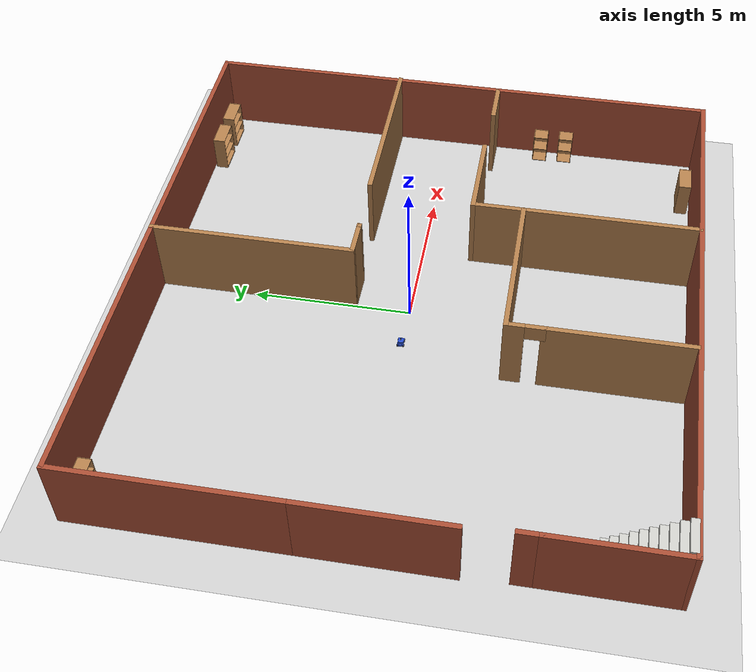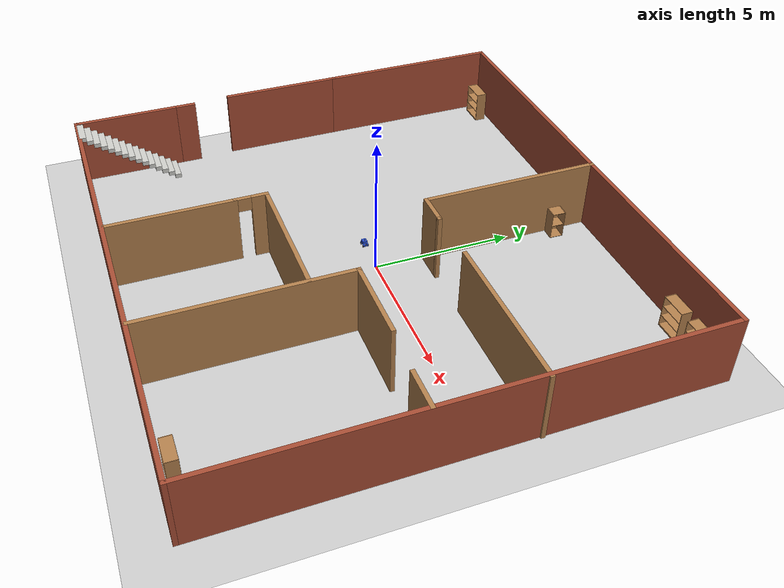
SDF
<sdf version="1.7">
 <world name="default">
  <light name="sun" type="directional">
   <pose>0 0 10 0 -0 0</pose>
   <diffuse>0.8 0.8 0.8 1</diffuse>
   <specular>0.2 0.2 0.2 1</specular>
   <attenuation>
    <range>1000</range>
    <constant>0.9</constant>
    <linear>0.01</linear>
    <quadratic>0.001</quadratic>
   </attenuation>
   <direction>-0.5 0.1 -0.9</direction>
   <spot><inner_angle>0</inner_angle><outer_angle>0</outer_angle><falloff>0</falloff></spot>
  </light>
  <model name="ground_plane">
   <static>1</static>
   <link name="link">
    <collision name="collision">
     <geometry><plane><normal>0 0 1</normal><size>100 100</size></plane></geometry>
     <surface><friction><ode><mu>100</mu><mu2>50</mu2></ode></friction></surface>
    </collision>
    <visual name="visual">
     <cast_shadows>0</cast_shadows>
     <geometry><plane><normal>0 0 1</normal><size>100 100</size></plane></geometry>
     <material>
      <script><uri>file://media/materials/scripts/gazebo.material</uri><name>Gazebo/Grey</name></script>
     </material>
    </visual>
   </link>
  </model>
  <gravity>0 0 -9.8</gravity>
  <magnetic_field>6e-06 2.3e-05 -4.2e-05</magnetic_field>
  <atmosphere type="adiabatic"/>
  <physics type="ode">
   <max_step_size>0.001</max_step_size>
   <real_time_factor>1</real_time_factor>
   <real_time_update_rate>1000</real_time_update_rate>
  </physics>
  <scene><ambient>0.4 0.4 0.4 1</ambient><background>0.7 0.7 0.7 1</background><shadows>1</shadows></scene>
  <audio><device>default</device></audio>
  <spherical_coordinates>
   <surface_model>EARTH_WGS84</surface_model>
   <latitude_deg>0</latitude_deg>
   <longitude_deg>0</longitude_deg>
   <elevation>0</elevation>
   <heading_deg>0</heading_deg>
  </spherical_coordinates>
  <model name="robot">
   <link name="base_footprint">
    <inertial>
     <pose>-0.011433 0 0.134833 0 -0 0</pose>
     <mass>3.75</mass>
     <inertia>
      <ixx>0.0254356</ixx>
      <ixy>0</ixy>
      <ixz>0.00138908</ixz>
      <iyy>0.0336579</iyy>
      <iyz>0</iyz>
      <izz>0.0123355</izz>
     </inertia>
    </inertial>
    <collision name="base_footprint_fixed_joint_lump__base_link_collision">
     <pose>0 0 0.078 0 -0 0</pose>
     <geometry><box><size>0.3 0.15 0.056</size></box></geometry>
    </collision>
    <collision name="base_footprint_fixed_joint_lump__mid_link_collision_1">
     <pose>0 0 0.1085 0 -0 0</pose>
     <geometry><box><size>0.3 0.2 0.005</size></box></geometry>
    </collision>
    <collision name="base_footprint_fixed_joint_lump__camera_link_collision_2">
     <pose>0.1425 0 0.1235 0 -0 0</pose>
     <geometry><box><size>0.015 0.07 0.025</size></box></geometry>
    </collision>
    <collision name="base_footprint_fixed_joint_lump__top_link_collision_3">
     <pose>-0.025 0 0.161 0 -0 0</pose>
     <geometry><box><size>0.18 0.17 0.1</size></box></geometry>
    </collision>
    <collision name="base_footprint_fixed_joint_lump__lidar_link_collision_4">
     <pose>0 0 0.226 0 -0 0</pose>
     <geometry><cylinder><length>0.03</length><radius>0.02</radius></cylinder></geometry>
    </collision>
    <visual name="base_footprint_fixed_joint_lump__base_link_visual">
     <pose>0 0 0.078 0 -0 0</pose>
     <geometry><box><size>0.3 0.15 0.056</size></box></geometry>
     <material>
      <script><name>Gazebo/Blue</name><uri>file://media/materials/scripts/gazebo.material</uri></script>
     </material>
    </visual>
    <visual name="base_footprint_fixed_joint_lump__mid_link_visual_1">
     <pose>0 0 0.1085 0 -0 0</pose>
     <geometry><box><size>0.3 0.2 0.005</size></box></geometry>
     <material>
      <script><name>Gazebo/Blue</name><uri>file://media/materials/scripts/gazebo.material</uri></script>
     </material>
    </visual>
    <visual name="base_footprint_fixed_joint_lump__camera_link_visual_2">
     <pose>0.1425 0 0.1235 0 -0 0</pose>
     <geometry><box><size>0.015 0.07 0.025</size></box></geometry>
     <material>
      <script><name>Gazebo/Black</name><uri>file://media/materials/scripts/gazebo.material</uri></script>
     </material>
    </visual>
    <visual name="base_footprint_fixed_joint_lump__top_link_visual_3">
     <pose>-0.025 0 0.161 0 -0 0</pose>
     <geometry><box><size>0.18 0.17 0.1</size></box></geometry>
     <material>
      <script><name>Gazebo/Blue</name><uri>file://media/materials/scripts/gazebo.material</uri></script>
     </material>
    </visual>
    <visual name="base_footprint_fixed_joint_lump__lidar_link_visual_4">
     <pose>0 0 0.226 0 -0 0</pose>
     <geometry><cylinder><length>0.03</length><radius>0.02</radius></cylinder></geometry>
     <material>
      <script><name>Gazebo/Black</name><uri>file://media/materials/scripts/gazebo.material</uri></script>
     </material>
    </visual>
    <sensor name="camera" type="camera">
     <visualize>1</visualize>
     <update_rate>10</update_rate>
     <camera>
      <horizontal_fov>1.089</horizontal_fov>
      <image><format>R8G8B8</format><width>640</width><height>480</height></image>
      <clip><near>0.05</near><far>2.1</far></clip>
     </camera>
     <plugin name="camera_controller" filename="libgazebo_ros_camera.so">
      <frame_name>camera_link_optical</frame_name>
     </plugin>
     <pose>0.1425 0 0.111 0 -0 0</pose>
    </sensor>
    <sensor name="laser" type="ray">
     <visualize>1</visualize>
     <update_rate>10</update_rate>
     <ray>
      <scan>
       <horizontal>
        <samples>360</samples>
        <min_angle>-3.14</min_angle>
        <max_angle>3.14</max_angle>
        <resolution>1</resolution>
       </horizontal>
       <vertical><samples>1</samples><min_angle>0</min_angle><max_angle>0</max_angle></vertical>
      </scan>
      <range><min>0.3</min><max>12</max></range>
     </ray>
     <plugin name="laser_controller" filename="libgazebo_ros_ray_sensor.so">
      <ros><argument>~/out:=scan</argument></ros>
      <output_type>sensor_msgs/LaserScan</output_type>
      <frame_name>lidar_link</frame_name>
     </plugin>
     <pose>0 0 0.226 0 -0 0</pose>
    </sensor>
   </link>
   <joint name="fl_wheel" type="revolute">
    <pose relative_to="base_footprint">0.1 0.0925 0.05 0 -0 0</pose>
    <parent>base_footprint</parent>
    <child>fl_wheel_link</child>
    <axis>
     <xyz>0 1 0</xyz>
     <limit><lower>-1e+16</lower><upper>1e+16</upper></limit>
     <dynamics><spring_reference>0</spring_reference><spring_stiffness>0</spring_stiffness></dynamics>
    </axis>
   </joint>
   <link name="fl_wheel_link">
    <pose relative_to="fl_wheel">0 0 0 0 -0 0</pose>
    <inertial>
     <pose>0 0 0 1.5708 -0 0</pose>
     <mass>0.2</mass>
     <inertia>
      <ixx>0.000145417</ixx>
      <ixy>0</ixy>
      <ixz>0</ixz>
      <iyy>0.000145417</iyy>
      <iyz>0</iyz>
      <izz>0.00025</izz>
     </inertia>
    </inertial>
    <collision name="fl_wheel_link_collision">
     <pose>0 0 0 1.5708 -0 0</pose>
     <geometry><cylinder><length>0.035</length><radius>0.05</radius></cylinder></geometry>
    </collision>
    <visual name="fl_wheel_link_visual">
     <pose>0 0 0 1.5708 -0 0</pose>
     <geometry><cylinder><length>0.035</length><radius>0.05</radius></cylinder></geometry>
     <material>
      <script><name>Gazebo/Black</name><uri>file://media/materials/scripts/gazebo.material</uri></script>
     </material>
    </visual>
   </link>
   <joint name="fr_wheel" type="revolute">
    <pose relative_to="base_footprint">0.1 -0.0925 0.05 0 -0 0</pose>
    <parent>base_footprint</parent>
    <child>fr_wheel_link</child>
    <axis>
     <xyz>0 1 0</xyz>
     <limit><lower>-1e+16</lower><upper>1e+16</upper></limit>
     <dynamics><spring_reference>0</spring_reference><spring_stiffness>0</spring_stiffness></dynamics>
    </axis>
   </joint>
   <link name="fr_wheel_link">
    <pose relative_to="fr_wheel">0 0 0 0 -0 0</pose>
    <inertial>
     <pose>0 0 0 1.5708 -0 0</pose>
     <mass>0.2</mass>
     <inertia>
      <ixx>0.000145417</ixx>
      <ixy>0</ixy>
      <ixz>0</ixz>
      <iyy>0.000145417</iyy>
      <iyz>0</iyz>
      <izz>0.00025</izz>
     </inertia>
    </inertial>
    <collision name="fr_wheel_link_collision">
     <pose>0 0 0 1.5708 -0 0</pose>
     <geometry><cylinder><length>0.035</length><radius>0.05</radius></cylinder></geometry>
    </collision>
    <visual name="fr_wheel_link_visual">
     <pose>0 0 0 1.5708 -0 0</pose>
     <geometry><cylinder><length>0.035</length><radius>0.05</radius></cylinder></geometry>
     <material>
      <script><name>Gazebo/Black</name><uri>file://media/materials/scripts/gazebo.material</uri></script>
     </material>
    </visual>
   </link>
   <joint name="rl_wheel" type="revolute">
    <pose relative_to="base_footprint">-0.1 0.0925 0.05 0 -0 0</pose>
    <parent>base_footprint</parent>
    <child>rl_wheel_link</child>
    <axis>
     <xyz>0 1 0</xyz>
     <limit><lower>-1e+16</lower><upper>1e+16</upper></limit>
     <dynamics><spring_reference>0</spring_reference><spring_stiffness>0</spring_stiffness></dynamics>
    </axis>
   </joint>
   <link name="rl_wheel_link">
    <pose relative_to="rl_wheel">0 0 0 0 -0 0</pose>
    <inertial>
     <pose>0 0 0 1.5708 -0 0</pose>
     <mass>0.2</mass>
     <inertia>
      <ixx>0.000145417</ixx>
      <ixy>0</ixy>
      <ixz>0</ixz>
      <iyy>0.000145417</iyy>
      <iyz>0</iyz>
      <izz>0.00025</izz>
     </inertia>
    </inertial>
    <collision name="rl_wheel_link_collision">
     <pose>0 0 0 1.5708 -0 0</pose>
     <geometry><cylinder><length>0.035</length><radius>0.05</radius></cylinder></geometry>
    </collision>
    <visual name="rl_wheel_link_visual">
     <pose>0 0 0 1.5708 -0 0</pose>
     <geometry><cylinder><length>0.035</length><radius>0.05</radius></cylinder></geometry>
     <material>
      <script><name>Gazebo/Black</name><uri>file://media/materials/scripts/gazebo.material</uri></script>
     </material>
    </visual>
   </link>
   <joint name="rr_wheel" type="revolute">
    <pose relative_to="base_footprint">-0.1 -0.0925 0.05 0 -0 0</pose>
    <parent>base_footprint</parent>
    <child>rr_wheel_link</child>
    <axis>
     <xyz>0 1 0</xyz>
     <limit><lower>-1e+16</lower><upper>1e+16</upper></limit>
     <dynamics><spring_reference>0</spring_reference><spring_stiffness>0</spring_stiffness></dynamics>
    </axis>
   </joint>
   <link name="rr_wheel_link">
    <pose relative_to="rr_wheel">0 0 0 0 -0 0</pose>
    <inertial>
     <pose>0 0 0 1.5708 -0 0</pose>
     <mass>0.2</mass>
     <inertia>
      <ixx>0.000145417</ixx>
      <ixy>0</ixy>
      <ixz>0</ixz>
      <iyy>0.000145417</iyy>
      <iyz>0</iyz>
      <izz>0.00025</izz>
     </inertia>
    </inertial>
    <collision name="rr_wheel_link_collision">
     <pose>0 0 0 1.5708 -0 0</pose>
     <geometry><cylinder><length>0.035</length><radius>0.05</radius></cylinder></geometry>
    </collision>
    <visual name="rr_wheel_link_visual">
     <pose>0 0 0 1.5708 -0 0</pose>
     <geometry><cylinder><length>0.035</length><radius>0.05</radius></cylinder></geometry>
     <material>
      <script><name>Gazebo/Black</name><uri>file://media/materials/scripts/gazebo.material</uri></script>
     </material>
    </visual>
   </link>
   <static>0</static>
   <plugin name="differential_drive_controller" filename="libgazebo_ros_diff_drive.so">
    <num_wheel_pairs>2</num_wheel_pairs>
    <left_joint>fl_wheel</left_joint>
    <right_joint>fr_wheel</right_joint>
    <left_joint>rl_wheel</left_joint>
    <right_joint>rr_wheel</right_joint>
    <wheel_separation>0.185</wheel_separation>
    <wheel_separation>0.185</wheel_separation>
    <wheel_diameter>0.1</wheel_diameter>
    <wheel_diameter>0.1</wheel_diameter>
    <updateRate>100</updateRate>
    <max_wheel_acceleration>1.0</max_wheel_acceleration>
    <publish_odom>1</publish_odom>
    <publish_odom_tf>1</publish_odom_tf>
    <publish_wheel_tf>1</publish_wheel_tf>
    <odometry_topic>odom</odometry_topic>
    <odometry_frame>odom</odometry_frame>
    <robot_base_frame>base_footprint</robot_base_frame>
   </plugin>
   <pose>-1.2971 0.05139 1e-06 0 -0 0.021978</pose>
  </model>
  <model name="Indoor">
   <pose>-0.163145 -0.298251 0 0 -0 0</pose>
   <link name="Stairs_0">
    <visual name="Stairs_0_Visual_0">
     <pose>-8.16542 -5.04769 0.083333 0 -0 0</pose>
     <geometry><box><size>1 0.233333 0.166667</size></box></geometry>
     <material>
      <script><uri>file://media/materials/scripts/gazebo.material</uri><name>Gazebo/CeilingTiled</name></script>
      <ambient>1 1 1 1</ambient>
     </material>
     <meta><layer>0</layer></meta>
    </visual>
    <collision name="Stairs_0_Collision_0">
     <geometry><box><size>1 0.233333 0.166667</size></box></geometry>
     <pose>-8.16542 -5.04769 0.083333 0 -0 0</pose>
    </collision>
    <visual name="Stairs_0_Visual_1">
     <pose>-8.16542 -5.28102 0.25 0 -0 0</pose>
     <geometry><box><size>1 0.233333 0.166667</size></box></geometry>
     <material>
      <script><uri>file://media/materials/scripts/gazebo.material</uri><name>Gazebo/CeilingTiled</name></script>
      <ambient>1 1 1 1</ambient>
     </material>
     <meta><layer>0</layer></meta>
    </visual>
    <collision name="Stairs_0_Collision_1">
     <geometry><box><size>1 0.233333 0.166667</size></box></geometry>
     <pose>-8.16542 -5.28102 0.25 0 -0 0</pose>
    </collision>
    <visual name="Stairs_0_Visual_2">
     <pose>-8.16542 -5.51436 0.416667 0 -0 0</pose>
     <geometry><box><size>1 0.233333 0.166667</size></box></geometry>
     <material>
      <script><uri>file://media/materials/scripts/gazebo.material</uri><name>Gazebo/CeilingTiled</name></script>
      <ambient>1 1 1 1</ambient>
     </material>
     <meta><layer>0</layer></meta>
    </visual>
    <collision name="Stairs_0_Collision_2">
     <geometry><box><size>1 0.233333 0.166667</size></box></geometry>
     <pose>-8.16542 -5.51436 0.416667 0 -0 0</pose>
    </collision>
    <visual name="Stairs_0_Visual_3">
     <pose>-8.16542 -5.74769 0.583333 0 -0 0</pose>
     <geometry><box><size>1 0.233333 0.166667</size></box></geometry>
     <material>
      <script><uri>file://media/materials/scripts/gazebo.material</uri><name>Gazebo/CeilingTiled</name></script>
      <ambient>1 1 1 1</ambient>
     </material>
     <meta><layer>0</layer></meta>
    </visual>
    <collision name="Stairs_0_Collision_3">
     <geometry><box><size>1 0.233333 0.166667</size></box></geometry>
     <pose>-8.16542 -5.74769 0.583333 0 -0 0</pose>
    </collision>
    <visual name="Stairs_0_Visual_4">
     <pose>-8.16542 -5.98103 0.75 0 -0 0</pose>
     <geometry><box><size>1 0.233333 0.166667</size></box></geometry>
     <material>
      <script><uri>file://media/materials/scripts/gazebo.material</uri><name>Gazebo/CeilingTiled</name></script>
      <ambient>1 1 1 1</ambient>
     </material>
     <meta><layer>0</layer></meta>
    </visual>
    <collision name="Stairs_0_Collision_4">
     <geometry><box><size>1 0.233333 0.166667</size></box></geometry>
     <pose>-8.16542 -5.98103 0.75 0 -0 0</pose>
    </collision>
    <visual name="Stairs_0_Visual_5">
     <pose>-8.16542 -6.21436 0.916667 0 -0 0</pose>
     <geometry><box><size>1 0.233333 0.166667</size></box></geometry>
     <material>
      <script><uri>file://media/materials/scripts/gazebo.material</uri><name>Gazebo/CeilingTiled</name></script>
      <ambient>1 1 1 1</ambient>
     </material>
     <meta><layer>0</layer></meta>
    </visual>
    <collision name="Stairs_0_Collision_5">
     <geometry><box><size>1 0.233333 0.166667</size></box></geometry>
     <pose>-8.16542 -6.21436 0.916667 0 -0 0</pose>
    </collision>
    <visual name="Stairs_0_Visual_6">
     <pose>-8.16542 -6.44769 1.08333 0 -0 0</pose>
     <geometry><box><size>1 0.233333 0.166667</size></box></geometry>
     <material>
      <script><uri>file://media/materials/scripts/gazebo.material</uri><name>Gazebo/CeilingTiled</name></script>
      <ambient>1 1 1 1</ambient>
     </material>
     <meta><layer>0</layer></meta>
    </visual>
    <collision name="Stairs_0_Collision_6">
     <geometry><box><size>1 0.233333 0.166667</size></box></geometry>
     <pose>-8.16542 -6.44769 1.08333 0 -0 0</pose>
    </collision>
    <visual name="Stairs_0_Visual_7">
     <pose>-8.16542 -6.68103 1.25 0 -0 0</pose>
     <geometry><box><size>1 0.233333 0.166667</size></box></geometry>
     <material>
      <script><uri>file://media/materials/scripts/gazebo.material</uri><name>Gazebo/CeilingTiled</name></script>
      <ambient>1 1 1 1</ambient>
     </material>
     <meta><layer>0</layer></meta>
    </visual>
    <collision name="Stairs_0_Collision_7">
     <geometry><box><size>1 0.233333 0.166667</size></box></geometry>
     <pose>-8.16542 -6.68103 1.25 0 -0 0</pose>
    </collision>
    <visual name="Stairs_0_Visual_8">
     <pose>-8.16542 -6.91436 1.41667 0 -0 0</pose>
     <geometry><box><size>1 0.233333 0.166667</size></box></geometry>
     <material>
      <script><uri>file://media/materials/scripts/gazebo.material</uri><name>Gazebo/CeilingTiled</name></script>
      <ambient>1 1 1 1</ambient>
     </material>
     <meta><layer>0</layer></meta>
    </visual>
    <collision name="Stairs_0_Collision_8">
     <geometry><box><size>1 0.233333 0.166667</size></box></geometry>
     <pose>-8.16542 -6.91436 1.41667 0 -0 0</pose>
    </collision>
    <visual name="Stairs_0_Visual_9">
     <pose>-8.16542 -7.14769 1.58333 0 -0 0</pose>
     <geometry><box><size>1 0.233333 0.166667</size></box></geometry>
     <material>
      <script><uri>file://media/materials/scripts/gazebo.material</uri><name>Gazebo/CeilingTiled</name></script>
      <ambient>1 1 1 1</ambient>
     </material>
     <meta><layer>0</layer></meta>
    </visual>
    <collision name="Stairs_0_Collision_9">
     <geometry><box><size>1 0.233333 0.166667</size></box></geometry>
     <pose>-8.16542 -7.14769 1.58333 0 -0 0</pose>
    </collision>
    <visual name="Stairs_0_Visual_10">
     <pose>-8.16542 -7.38103 1.75 0 -0 0</pose>
     <geometry><box><size>1 0.233333 0.166667</size></box></geometry>
     <material>
      <script><uri>file://media/materials/scripts/gazebo.material</uri><name>Gazebo/CeilingTiled</name></script>
      <ambient>1 1 1 1</ambient>
     </material>
     <meta><layer>0</layer></meta>
    </visual>
    <collision name="Stairs_0_Collision_10">
     <geometry><box><size>1 0.233333 0.166667</size></box></geometry>
     <pose>-8.16542 -7.38103 1.75 0 -0 0</pose>
    </collision>
    <visual name="Stairs_0_Visual_11">
     <pose>-8.16542 -7.61436 1.91667 0 -0 0</pose>
     <geometry><box><size>1 0.233333 0.166667</size></box></geometry>
     <material>
      <script><uri>file://media/materials/scripts/gazebo.material</uri><name>Gazebo/CeilingTiled</name></script>
      <ambient>1 1 1 1</ambient>
     </material>
     <meta><layer>0</layer></meta>
    </visual>
    <collision name="Stairs_0_Collision_11">
     <geometry><box><size>1 0.233333 0.166667</size></box></geometry>
     <pose>-8.16542 -7.61436 1.91667 0 -0 0</pose>
    </collision>
    <visual name="Stairs_0_Visual_12">
     <pose>-8.16542 -7.84769 2.08333 0 -0 0</pose>
     <geometry><box><size>1 0.233333 0.166667</size></box></geometry>
     <material>
      <script><uri>file://media/materials/scripts/gazebo.material</uri><name>Gazebo/CeilingTiled</name></script>
      <ambient>1 1 1 1</ambient>
     </material>
     <meta><layer>0</layer></meta>
    </visual>
    <collision name="Stairs_0_Collision_12">
     <geometry><box><size>1 0.233333 0.166667</size></box></geometry>
     <pose>-8.16542 -7.84769 2.08333 0 -0 0</pose>
    </collision>
    <visual name="Stairs_0_Visual_13">
     <pose>-8.16542 -8.08103 2.25 0 -0 0</pose>
     <geometry><box><size>1 0.233333 0.166667</size></box></geometry>
     <material>
      <script><uri>file://media/materials/scripts/gazebo.material</uri><name>Gazebo/CeilingTiled</name></script>
      <ambient>1 1 1 1</ambient>
     </material>
     <meta><layer>0</layer></meta>
    </visual>
    <collision name="Stairs_0_Collision_13">
     <geometry><box><size>1 0.233333 0.166667</size></box></geometry>
     <pose>-8.16542 -8.08103 2.25 0 -0 0</pose>
    </collision>
    <visual name="Stairs_0_Visual_14">
     <pose>-8.16542 -8.31436 2.41667 0 -0 0</pose>
     <geometry><box><size>1 0.233333 0.166667</size></box></geometry>
     <material>
      <script><uri>file://media/materials/scripts/gazebo.material</uri><name>Gazebo/CeilingTiled</name></script>
      <ambient>1 1 1 1</ambient>
     </material>
     <meta><layer>0</layer></meta>
    </visual>
    <collision name="Stairs_0_Collision_14">
     <geometry><box><size>1 0.233333 0.166667</size></box></geometry>
     <pose>-8.16542 -8.31436 2.41667 0 -0 0</pose>
    </collision>
   </link>
   <link name="Wall_0">
    <collision name="Wall_0_Collision">
     <geometry><box><size>4.5 0.15 2.5</size></box></geometry>
     <pose>0 0 1.25 0 -0 0</pose>
    </collision>
    <visual name="Wall_0_Visual">
     <pose>0 0 1.25 0 -0 0</pose>
     <geometry><box><size>4.5 0.15 2.5</size></box></geometry>
     <material>
      <script><uri>file://media/materials/scripts/gazebo.material</uri><name>Gazebo/Bricks</name></script>
      <ambient>1 1 1 1</ambient>
     </material>
     <meta><layer>0</layer></meta>
    </visual>
    <pose>-8.8787 -0.35 0 0 -0 1.5708</pose>
   </link>
   <link name="Wall_10">
    <collision name="Wall_10_Collision">
     <geometry><box><size>6.5 0.15 2.5</size></box></geometry>
     <pose>0 0 1.25 0 -0 0</pose>
    </collision>
    <visual name="Wall_10_Visual">
     <pose>0 0 1.25 0 -0 0</pose>
     <geometry><box><size>6.5 0.15 2.5</size></box></geometry>
     <material>
      <script><uri>file://media/materials/scripts/gazebo.material</uri><name>Gazebo/Wood</name></script>
      <ambient>1 1 1 1</ambient>
     </material>
     <meta><layer>0</layer></meta>
    </visual>
    <pose>0.221304 5.25 0 0 -0 -1.5708</pose>
   </link>
   <link name="Wall_11">
    <collision name="Wall_11_Collision">
     <geometry><box><size>1.25 0.15 2.5</size></box></geometry>
     <pose>0 0 1.25 0 -0 0</pose>
    </collision>
    <visual name="Wall_11_Visual">
     <pose>0 0 1.25 0 -0 0</pose>
     <geometry><box><size>1.25 0.15 2.5</size></box></geometry>
     <material>
      <script><uri>file://media/materials/scripts/gazebo.material</uri><name>Gazebo/Wood</name></script>
      <ambient>1 1 1 1</ambient>
     </material>
     <meta><layer>0</layer></meta>
    </visual>
    <pose>0.771304 2.075 0 0 -0 0</pose>
   </link>
   <link name="Wall_12">
    <collision name="Wall_12_Collision">
     <geometry><box><size>0.15 0.15 2.5</size></box></geometry>
     <pose>0 0 1.25 0 -0 0</pose>
    </collision>
    <visual name="Wall_12_Visual">
     <pose>0 0 1.25 0 -0 0</pose>
     <geometry><box><size>0.15 0.15 2.5</size></box></geometry>
     <material>
      <script><uri>file://media/materials/scripts/gazebo.material</uri><name>Gazebo/Wood</name></script>
      <ambient>1 1 1 1</ambient>
     </material>
     <meta><layer>0</layer></meta>
    </visual>
    <pose>1.3213 2.075 0 0 -0 0</pose>
   </link>
   <link name="Wall_13">
    <collision name="Wall_13_Collision">
     <geometry><box><size>0.16 0.15 2.5</size></box></geometry>
     <pose>0 0 1.25 0 -0 0</pose>
    </collision>
    <visual name="Wall_13_Visual">
     <pose>0 0 1.25 0 -0 0</pose>
     <geometry><box><size>0.16 0.15 2.5</size></box></geometry>
     <material>
      <script><uri>file://media/materials/scripts/gazebo.material</uri><name>Gazebo/Wood</name></script>
      <ambient>1 1 1 1</ambient>
     </material>
     <meta><layer>0</layer></meta>
    </visual>
    <pose>1.3263 2.075 0 0 -0 0</pose>
   </link>
   <link name="Wall_17">
    <collision name="Wall_17_Collision">
     <geometry><box><size>5.75 0.15 2.5</size></box></geometry>
     <pose>0 0 1.25 0 -0 0</pose>
    </collision>
    <visual name="Wall_17_Visual">
     <pose>0 0 1.25 0 -0 0</pose>
     <geometry><box><size>5.75 0.15 2.5</size></box></geometry>
     <material>
      <script><uri>file://media/materials/scripts/gazebo.material</uri><name>Gazebo/Wood</name></script>
      <ambient>1 1 1 1</ambient>
     </material>
     <meta><layer>0</layer></meta>
    </visual>
    <pose>6.0787 2.1132 0 0 -0 3.14159</pose>
   </link>
   <link name="Wall_19">
    <collision name="Wall_19_Collision">
     <geometry><box><size>1.5 0.15 2.5</size></box></geometry>
     <pose>0 0 1.25 0 -0 0</pose>
    </collision>
    <visual name="Wall_19_Visual">
     <pose>0 0 1.25 0 -0 0</pose>
     <geometry><box><size>1.5 0.15 2.5</size></box></geometry>
     <material>
      <script><uri>file://media/materials/scripts/gazebo.material</uri><name>Gazebo/Wood</name></script>
      <ambient>1 1 1 1</ambient>
     </material>
     <meta><layer>0</layer></meta>
    </visual>
    <pose>8.14302 -1.36263 0 0 -0 3.14159</pose>
   </link>
   <link name="Wall_2">
    <collision name="Wall_2_Collision">
     <geometry><box><size>6.75 0.15 2.5</size></box></geometry>
     <pose>0 0 1.25 0 -0 0</pose>
    </collision>
    <visual name="Wall_2_Visual">
     <pose>0 0 1.25 0 -0 0</pose>
     <geometry><box><size>6.75 0.15 2.5</size></box></geometry>
     <material>
      <script><uri>file://media/materials/scripts/gazebo.material</uri><name>Gazebo/Bricks</name></script>
      <ambient>1 1 1 1</ambient>
     </material>
     <meta><layer>0</layer></meta>
    </visual>
    <pose>-8.8787 5.125 0 0 -0 1.5708</pose>
   </link>
   <link name="Wall_22">
    <collision name="Wall_22_Collision">
     <geometry><box><size>7.25 0.15 2.5</size></box></geometry>
     <pose>0 0 1.25 0 -0 0</pose>
    </collision>
    <visual name="Wall_22_Visual">
     <pose>0 0 1.25 0 -0 0</pose>
     <geometry><box><size>7.25 0.15 2.5</size></box></geometry>
     <material>
      <script><uri>file://media/materials/scripts/gazebo.material</uri><name>Gazebo/Wood</name></script>
      <ambient>1 1 1 1</ambient>
     </material>
     <meta><layer>0</layer></meta>
    </visual>
    <pose>2.88188 -4.83035 0 0 -0 -1.5708</pose>
   </link>
   <link name="Wall_26">
    <collision name="Wall_26_Collision">
     <geometry><box><size>3 0.15 2.5</size></box></geometry>
     <pose>0 0 1.25 0 -0 0</pose>
    </collision>
    <visual name="Wall_26_Visual">
     <pose>0 0 1.25 0 -0 0</pose>
     <geometry><box><size>3 0.15 2.5</size></box></geometry>
     <material>
      <script><uri>file://media/materials/scripts/gazebo.material</uri><name>Gazebo/Wood</name></script>
      <ambient>1 1 1 1</ambient>
     </material>
     <meta><layer>0</layer></meta>
    </visual>
    <pose>4.30688 -1.28035 0 0 -0 0</pose>
   </link>
   <link name="Wall_28">
    <collision name="Wall_28_Collision">
     <geometry><box><size>5 0.15 2.5</size></box></geometry>
     <pose>0 0 1.25 0 -0 0</pose>
    </collision>
    <visual name="Wall_28_Visual">
     <pose>0 0 1.25 0 -0 0</pose>
     <geometry><box><size>5 0.15 2.5</size></box></geometry>
     <material>
      <script><uri>file://media/materials/scripts/gazebo.material</uri><name>Gazebo/Wood</name></script>
      <ambient>1 1 1 1</ambient>
     </material>
     <meta><layer>0</layer></meta>
    </visual>
    <pose>0.446415 -2.88223 0 0 -0 3.14159</pose>
   </link>
   <link name="Wall_29">
    <pose>-1.97859 -3.43223 0 0 -0 -1.5708</pose>
    <visual name="Wall_29_Visual_0">
     <pose>-0.312502 0 1.25 0 -0 0</pose>
     <geometry><box><size>0.624996 0.15 2.5</size></box></geometry>
     <material>
      <script><uri>file://media/materials/scripts/gazebo.material</uri><name>Gazebo/Wood</name></script>
      <ambient>1 1 1 1</ambient>
     </material>
     <meta><layer>0</layer></meta>
    </visual>
    <collision name="Wall_29_Collision_0">
     <geometry><box><size>0.624996 0.15 2.5</size></box></geometry>
     <pose>-0.312502 0 1.25 0 -0 0</pose>
    </collision>
    <visual name="Wall_29_Visual_1">
     <pose>0.312498 0 2.25 0 -0 0</pose>
     <geometry><box><size>0.625004 0.15 0.5</size></box></geometry>
     <material>
      <script><uri>file://media/materials/scripts/gazebo.material</uri><name>Gazebo/Wood</name></script>
      <ambient>1 1 1 1</ambient>
     </material>
     <meta><layer>0</layer></meta>
    </visual>
    <collision name="Wall_29_Collision_1">
     <geometry><box><size>0.625004 0.15 0.5</size></box></geometry>
     <pose>0.312498 0 2.25 0 -0 0</pose>
    </collision>
   </link>
   <link name="Wall_3">
    <collision name="Wall_3_Collision">
     <geometry><box><size>9.25 0.15 2.5</size></box></geometry>
     <pose>0 0 1.25 0 -0 0</pose>
    </collision>
    <visual name="Wall_3_Visual">
     <pose>0 0 1.25 0 -0 0</pose>
     <geometry><box><size>9.25 0.15 2.5</size></box></geometry>
     <material>
      <script><uri>file://media/materials/scripts/gazebo.material</uri><name>Gazebo/Bricks</name></script>
      <ambient>1 1 1 1</ambient>
     </material>
     <meta><layer>0</layer></meta>
    </visual>
    <pose>-4.3287 8.425 0 0 -0 0</pose>
   </link>
   <link name="Wall_31">
    <collision name="Wall_31_Collision">
     <geometry><box><size>4.5 0.15 2.5</size></box></geometry>
     <pose>0 0 1.25 0 -0 0</pose>
    </collision>
    <visual name="Wall_31_Visual">
     <pose>0 0 1.25 0 -0 0</pose>
     <geometry><box><size>4.5 0.15 2.5</size></box></geometry>
     <material>
      <script><uri>file://media/materials/scripts/gazebo.material</uri><name>Gazebo/Wood</name></script>
      <ambient>1 1 1 1</ambient>
     </material>
     <meta><layer>0</layer></meta>
    </visual>
    <pose>-1.97859 -6.15723 0 0 -0 -1.5708</pose>
   </link>
   <link name="Wall_4">
    <collision name="Wall_4_Collision">
     <geometry><box><size>8.75 0.15 2.5</size></box></geometry>
     <pose>0 0 1.25 0 -0 0</pose>
    </collision>
    <visual name="Wall_4_Visual">
     <pose>0 0 1.25 0 -0 0</pose>
     <geometry><box><size>8.75 0.15 2.5</size></box></geometry>
     <material>
      <script><uri>file://media/materials/scripts/gazebo.material</uri><name>Gazebo/Bricks</name></script>
      <ambient>1 1 1 1</ambient>
     </material>
     <meta><layer>0</layer></meta>
    </visual>
    <pose>4.5213 8.425 0 0 -0 0</pose>
   </link>
   <link name="Wall_5">
    <collision name="Wall_5_Collision">
     <geometry><box><size>17 0.15 2.5</size></box></geometry>
     <pose>0 0 1.25 0 -0 0</pose>
    </collision>
    <visual name="Wall_5_Visual">
     <pose>0 0 1.25 0 -0 0</pose>
     <geometry><box><size>17 0.15 2.5</size></box></geometry>
     <material>
      <script><uri>file://media/materials/scripts/gazebo.material</uri><name>Gazebo/Bricks</name></script>
      <ambient>1 1 1 1</ambient>
     </material>
     <meta><layer>0</layer></meta>
    </visual>
    <pose>8.8213 -0 0 0 -0 -1.5708</pose>
   </link>
   <link name="Wall_6">
    <collision name="Wall_6_Collision">
     <geometry><box><size>17.75 0.15 2.5</size></box></geometry>
     <pose>0 0 1.25 0 -0 0</pose>
    </collision>
    <visual name="Wall_6_Visual">
     <pose>0 0 1.25 0 -0 0</pose>
     <geometry><box><size>17.75 0.15 2.5</size></box></geometry>
     <material>
      <script><uri>file://media/materials/scripts/gazebo.material</uri><name>Gazebo/Bricks</name></script>
      <ambient>1 1 1 1</ambient>
     </material>
     <meta><layer>0</layer></meta>
    </visual>
    <pose>0.021304 -8.425 0 0 -0 3.14159</pose>
   </link>
   <link name="Wall_7">
    <collision name="Wall_7_Collision">
     <geometry><box><size>4 0.15 2.5</size></box></geometry>
     <pose>0 0 1.25 0 -0 0</pose>
    </collision>
    <visual name="Wall_7_Visual">
     <pose>0 0 1.25 0 -0 0</pose>
     <geometry><box><size>4 0.15 2.5</size></box></geometry>
     <material>
      <script><uri>file://media/materials/scripts/gazebo.material</uri><name>Gazebo/Bricks</name></script>
      <ambient>1 1 1 1</ambient>
     </material>
     <meta><layer>0</layer></meta>
    </visual>
    <pose>-8.7787 -6.5 0 0 -0 1.5708</pose>
   </link>
   <link name="Wall_8">
    <collision name="Wall_8_Collision">
     <geometry><box><size>0.75 0.15 2.5</size></box></geometry>
     <pose>0 0 1.25 0 -0 0</pose>
    </collision>
    <visual name="Wall_8_Visual">
     <pose>0 0 1.25 0 -0 0</pose>
     <geometry><box><size>0.75 0.15 2.5</size></box></geometry>
     <material>
      <script><uri>file://media/materials/scripts/gazebo.material</uri><name>Gazebo/Bricks</name></script>
      <ambient>1 1 1 1</ambient>
     </material>
     <meta><layer>0</layer></meta>
    </visual>
    <pose>-8.7787 -4.275 0 0 -0 1.5708</pose>
   </link>
   <static>1</static>
  </model>
  <model name="bookshelf">
   <static>1</static>
   <link name="link">
    <inertial><mass>1</mass></inertial>
    <collision name="back">
     <pose>0 0.005 0.6 0 -0 0</pose>
     <geometry><box><size>0.9 0.01 1.2</size></box></geometry>
    </collision>
    <visual name="visual1">
     <pose>0 0.005 0.6 0 -0 0</pose>
     <geometry><box><size>0.9 0.01 1.2</size></box></geometry>
     <material>
      <script><uri>file://media/materials/scripts/gazebo.material</uri><name>Gazebo/Wood</name></script>
     </material>
    </visual>
    <collision name="left_side">
     <pose>0.45 -0.195 0.6 0 -0 0</pose>
     <geometry><box><size>0.02 0.4 1.2</size></box></geometry>
    </collision>
    <visual name="visual2">
     <pose>0.45 -0.195 0.6 0 -0 0</pose>
     <geometry><box><size>0.02 0.4 1.2</size></box></geometry>
     <material>
      <script><uri>file://media/materials/scripts/gazebo.material</uri><name>Gazebo/Wood</name></script>
     </material>
    </visual>
    <collision name="right_side">
     <pose>-0.45 -0.195 0.6 0 -0 0</pose>
     <geometry><box><size>0.02 0.4 1.2</size></box></geometry>
    </collision>
    <visual name="visual3">
     <pose>-0.45 -0.195 0.6 0 -0 0</pose>
     <geometry><box><size>0.02 0.4 1.2</size></box></geometry>
     <material>
      <script><uri>file://media/materials/scripts/gazebo.material</uri><name>Gazebo/Wood</name></script>
     </material>
    </visual>
    <collision name="bottom">
     <pose>0 -0.195 0.03 0 -0 0</pose>
     <geometry><box><size>0.88 0.4 0.06</size></box></geometry>
    </collision>
    <visual name="visual4">
     <pose>0 -0.195 0.03 0 -0 0</pose>
     <geometry><box><size>0.88 0.4 0.06</size></box></geometry>
     <material>
      <script><uri>file://media/materials/scripts/gazebo.material</uri><name>Gazebo/Wood</name></script>
     </material>
    </visual>
    <collision name="top">
     <pose>0 -0.195 1.19 0 -0 0</pose>
     <geometry><box><size>0.88 0.4 0.02</size></box></geometry>
    </collision>
    <visual name="visual5">
     <pose>0 -0.195 1.19 0 -0 0</pose>
     <geometry><box><size>0.88 0.4 0.02</size></box></geometry>
     <material>
      <script><uri>file://media/materials/scripts/gazebo.material</uri><name>Gazebo/Wood</name></script>
     </material>
    </visual>
    <collision name="low_shelf">
     <pose>0 -0.195 0.43 0 -0 0</pose>
     <geometry><box><size>0.88 0.4 0.02</size></box></geometry>
    </collision>
    <visual name="visual6">
     <pose>0 -0.195 0.43 0 -0 0</pose>
     <geometry><box><size>0.88 0.4 0.02</size></box></geometry>
     <material>
      <script><uri>file://media/materials/scripts/gazebo.material</uri><name>Gazebo/Wood</name></script>
     </material>
    </visual>
    <collision name="high_shelf">
     <pose>0 -0.195 0.8 0 -0 0</pose>
     <geometry><box><size>0.88 0.4 0.02</size></box></geometry>
    </collision>
    <visual name="visual7">
     <pose>0 -0.195 0.8 0 -0 0</pose>
     <geometry><box><size>0.88 0.4 0.02</size></box></geometry>
     <material>
      <script><uri>file://media/materials/scripts/gazebo.material</uri><name>Gazebo/Wood</name></script>
     </material>
    </visual>
   </link>
   <pose>7.52746 7.97587 0 0 -0 0</pose>
  </model>
  <model name="bookshelf_0">
   <static>1</static>
   <link name="link">
    <inertial><mass>1</mass></inertial>
    <collision name="back">
     <pose>0 0.005 0.6 0 -0 0</pose>
     <geometry><box><size>0.9 0.01 1.2</size></box></geometry>
    </collision>
    <visual name="visual1">
     <pose>0 0.005 0.6 0 -0 0</pose>
     <geometry><box><size>0.9 0.01 1.2</size></box></geometry>
     <material>
      <script><uri>file://media/materials/scripts/gazebo.material</uri><name>Gazebo/Wood</name></script>
     </material>
    </visual>
    <collision name="left_side">
     <pose>0.45 -0.195 0.6 0 -0 0</pose>
     <geometry><box><size>0.02 0.4 1.2</size></box></geometry>
    </collision>
    <visual name="visual2">
     <pose>0.45 -0.195 0.6 0 -0 0</pose>
     <geometry><box><size>0.02 0.4 1.2</size></box></geometry>
     <material>
      <script><uri>file://media/materials/scripts/gazebo.material</uri><name>Gazebo/Wood</name></script>
     </material>
    </visual>
    <collision name="right_side">
     <pose>-0.45 -0.195 0.6 0 -0 0</pose>
     <geometry><box><size>0.02 0.4 1.2</size></box></geometry>
    </collision>
    <visual name="visual3">
     <pose>-0.45 -0.195 0.6 0 -0 0</pose>
     <geometry><box><size>0.02 0.4 1.2</size></box></geometry>
     <material>
      <script><uri>file://media/materials/scripts/gazebo.material</uri><name>Gazebo/Wood</name></script>
     </material>
    </visual>
    <collision name="bottom">
     <pose>0 -0.195 0.03 0 -0 0</pose>
     <geometry><box><size>0.88 0.4 0.06</size></box></geometry>
    </collision>
    <visual name="visual4">
     <pose>0 -0.195 0.03 0 -0 0</pose>
     <geometry><box><size>0.88 0.4 0.06</size></box></geometry>
     <material>
      <script><uri>file://media/materials/scripts/gazebo.material</uri><name>Gazebo/Wood</name></script>
     </material>
    </visual>
    <collision name="top">
     <pose>0 -0.195 1.19 0 -0 0</pose>
     <geometry><box><size>0.88 0.4 0.02</size></box></geometry>
    </collision>
    <visual name="visual5">
     <pose>0 -0.195 1.19 0 -0 0</pose>
     <geometry><box><size>0.88 0.4 0.02</size></box></geometry>
     <material>
      <script><uri>file://media/materials/scripts/gazebo.material</uri><name>Gazebo/Wood</name></script>
     </material>
    </visual>
    <collision name="low_shelf">
     <pose>0 -0.195 0.43 0 -0 0</pose>
     <geometry><box><size>0.88 0.4 0.02</size></box></geometry>
    </collision>
    <visual name="visual6">
     <pose>0 -0.195 0.43 0 -0 0</pose>
     <geometry><box><size>0.88 0.4 0.02</size></box></geometry>
     <material>
      <script><uri>file://media/materials/scripts/gazebo.material</uri><name>Gazebo/Wood</name></script>
     </material>
    </visual>
    <collision name="high_shelf">
     <pose>0 -0.195 0.8 0 -0 0</pose>
     <geometry><box><size>0.88 0.4 0.02</size></box></geometry>
    </collision>
    <visual name="visual7">
     <pose>0 -0.195 0.8 0 -0 0</pose>
     <geometry><box><size>0.88 0.4 0.02</size></box></geometry>
     <material>
      <script><uri>file://media/materials/scripts/gazebo.material</uri><name>Gazebo/Wood</name></script>
     </material>
    </visual>
   </link>
   <pose>6.30804 7.97945 0 0 -0 0</pose>
  </model>
  <model name="cabinet">
   <static>1</static>
   <link name="cabinet_bottom_plate">
    <inertial>
     <pose>0 0 -1 0 -0 0</pose>
     <inertia><ixx>2.05</ixx><ixy>0</ixy><ixz>0</ixz><iyy>2.05</iyy><iyz>0</iyz><izz>2.05</izz></inertia>
     <mass>25</mass>
    </inertial>
    <collision name="cabinet_bottom_plate_geom">
     <pose>0 0 0.01 0 -0 0</pose>
     <geometry><box><size>0.45 0.45 0.02</size></box></geometry>
    </collision>
    <visual name="cabinet_bottom_plate_geom_visual">
     <pose>0 0 0.01 0 -0 0</pose>
     <geometry><box><size>0.45 0.45 0.02</size></box></geometry>
     <material>
      <script><uri>file://media/materials/scripts/gazebo.material</uri><name>Gazebo/Wood</name></script>
     </material>
    </visual>
    <collision name="cabinet_bottom_plate_geom_cabinet_back_plate">
     <pose>0.235 0 0.51 0 -0 0</pose>
     <geometry><box><size>0.02 0.45 1.02</size></box></geometry>
    </collision>
    <visual name="cabinet_bottom_plate_geom_cabinet_back_plate_visual">
     <pose>0.235 0 0.51 0 -0 0</pose>
     <geometry><box><size>0.02 0.45 1.02</size></box></geometry>
     <material>
      <script><uri>file://media/materials/scripts/gazebo.material</uri><name>Gazebo/Wood</name></script>
     </material>
    </visual>
    <collision name="cabinet_bottom_plate_geom_cabinet_left_plate">
     <pose>0 0.235 0.51 0 -0 0</pose>
     <geometry><box><size>0.45 0.02 1.02</size></box></geometry>
    </collision>
    <visual name="cabinet_bottom_plate_geom_cabinet_left_plate_visual">
     <pose>0 0.235 0.51 0 -0 0</pose>
     <geometry><box><size>0.45 0.02 1.02</size></box></geometry>
     <material>
      <script><uri>file://media/materials/scripts/gazebo.material</uri><name>Gazebo/Wood</name></script>
     </material>
    </visual>
    <collision name="cabinet_bottom_plate_geom_cabinet_middle_plate">
     <pose>0 0 0.51 0 -0 0</pose>
     <geometry><box><size>0.45 0.45 0.02</size></box></geometry>
    </collision>
    <visual name="cabinet_bottom_plate_geom_cabinet_middle_plate_visual">
     <pose>0 0 0.51 0 -0 0</pose>
     <geometry><box><size>0.45 0.45 0.02</size></box></geometry>
     <material>
      <script><uri>file://media/materials/scripts/gazebo.material</uri><name>Gazebo/Wood</name></script>
     </material>
    </visual>
    <collision name="cabinet_bottom_plate_geom_cabinet_right_plate">
     <pose>0 -0.235 0.51 0 -0 0</pose>
     <geometry><box><size>0.45 0.02 1.02</size></box></geometry>
    </collision>
    <visual name="cabinet_bottom_plate_geom_cabinet_right_plate_visual">
     <pose>0 -0.235 0.51 0 -0 0</pose>
     <geometry><box><size>0.45 0.02 1.02</size></box></geometry>
     <material>
      <script><uri>file://media/materials/scripts/gazebo.material</uri><name>Gazebo/Wood</name></script>
     </material>
    </visual>
    <collision name="cabinet_bottom_plate_geom_cabinet_top_plate">
     <pose>0 0 1.01 0 -0 0</pose>
     <geometry><box><size>0.45 0.45 0.02</size></box></geometry>
    </collision>
    <visual name="cabinet_bottom_plate_geom_cabinet_top_plate_visual">
     <pose>0 0 1.01 0 -0 0</pose>
     <geometry><box><size>0.45 0.45 0.02</size></box></geometry>
     <material>
      <script><uri>file://media/materials/scripts/gazebo.material</uri><name>Gazebo/Wood</name></script>
     </material>
    </visual>
   </link>
   <pose>0.385249 6.7491 0 0 -0 3.10049</pose>
  </model>
  <model name="cabinet_0">
   <static>1</static>
   <link name="cabinet_bottom_plate">
    <inertial>
     <pose>0 0 -1 0 -0 0</pose>
     <inertia><ixx>2.05</ixx><ixy>0</ixy><ixz>0</ixz><iyy>2.05</iyy><iyz>0</iyz><izz>2.05</izz></inertia>
     <mass>25</mass>
    </inertial>
    <collision name="cabinet_bottom_plate_geom">
     <pose>0 0 0.01 0 -0 0</pose>
     <geometry><box><size>0.45 0.45 0.02</size></box></geometry>
    </collision>
    <visual name="cabinet_bottom_plate_geom_visual">
     <pose>0 0 0.01 0 -0 0</pose>
     <geometry><box><size>0.45 0.45 0.02</size></box></geometry>
     <material>
      <script><uri>file://media/materials/scripts/gazebo.material</uri><name>Gazebo/Wood</name></script>
     </material>
    </visual>
    <collision name="cabinet_bottom_plate_geom_cabinet_back_plate">
     <pose>0.235 0 0.51 0 -0 0</pose>
     <geometry><box><size>0.02 0.45 1.02</size></box></geometry>
    </collision>
    <visual name="cabinet_bottom_plate_geom_cabinet_back_plate_visual">
     <pose>0.235 0 0.51 0 -0 0</pose>
     <geometry><box><size>0.02 0.45 1.02</size></box></geometry>
     <material>
      <script><uri>file://media/materials/scripts/gazebo.material</uri><name>Gazebo/Wood</name></script>
     </material>
    </visual>
    <collision name="cabinet_bottom_plate_geom_cabinet_left_plate">
     <pose>0 0.235 0.51 0 -0 0</pose>
     <geometry><box><size>0.45 0.02 1.02</size></box></geometry>
    </collision>
    <visual name="cabinet_bottom_plate_geom_cabinet_left_plate_visual">
     <pose>0 0.235 0.51 0 -0 0</pose>
     <geometry><box><size>0.45 0.02 1.02</size></box></geometry>
     <material>
      <script><uri>file://media/materials/scripts/gazebo.material</uri><name>Gazebo/Wood</name></script>
     </material>
    </visual>
    <collision name="cabinet_bottom_plate_geom_cabinet_middle_plate">
     <pose>0 0 0.51 0 -0 0</pose>
     <geometry><box><size>0.45 0.45 0.02</size></box></geometry>
    </collision>
    <visual name="cabinet_bottom_plate_geom_cabinet_middle_plate_visual">
     <pose>0 0 0.51 0 -0 0</pose>
     <geometry><box><size>0.45 0.45 0.02</size></box></geometry>
     <material>
      <script><uri>file://media/materials/scripts/gazebo.material</uri><name>Gazebo/Wood</name></script>
     </material>
    </visual>
    <collision name="cabinet_bottom_plate_geom_cabinet_right_plate">
     <pose>0 -0.235 0.51 0 -0 0</pose>
     <geometry><box><size>0.45 0.02 1.02</size></box></geometry>
    </collision>
    <visual name="cabinet_bottom_plate_geom_cabinet_right_plate_visual">
     <pose>0 -0.235 0.51 0 -0 0</pose>
     <geometry><box><size>0.45 0.02 1.02</size></box></geometry>
     <material>
      <script><uri>file://media/materials/scripts/gazebo.material</uri><name>Gazebo/Wood</name></script>
     </material>
    </visual>
    <collision name="cabinet_bottom_plate_geom_cabinet_top_plate">
     <pose>0 0 1.01 0 -0 0</pose>
     <geometry><box><size>0.45 0.45 0.02</size></box></geometry>
    </collision>
    <visual name="cabinet_bottom_plate_geom_cabinet_top_plate_visual">
     <pose>0 0 1.01 0 -0 0</pose>
     <geometry><box><size>0.45 0.45 0.02</size></box></geometry>
     <material>
      <script><uri>file://media/materials/scripts/gazebo.material</uri><name>Gazebo/Wood</name></script>
     </material>
    </visual>
   </link>
   <pose>8.31198 -3.31523 0 0 -0 0</pose>
  </model>
  <model name="cabinet_1">
   <static>1</static>
   <link name="cabinet_bottom_plate">
    <inertial>
     <pose>0 0 -1 0 -0 0</pose>
     <inertia><ixx>2.05</ixx><ixy>0</ixy><ixz>0</ixz><iyy>2.05</iyy><iyz>0</iyz><izz>2.05</izz></inertia>
     <mass>25</mass>
    </inertial>
    <collision name="cabinet_bottom_plate_geom">
     <pose>0 0 0.01 0 -0 0</pose>
     <geometry><box><size>0.45 0.45 0.02</size></box></geometry>
    </collision>
    <visual name="cabinet_bottom_plate_geom_visual">
     <pose>0 0 0.01 0 -0 0</pose>
     <geometry><box><size>0.45 0.45 0.02</size></box></geometry>
     <material>
      <script><uri>file://media/materials/scripts/gazebo.material</uri><name>Gazebo/Wood</name></script>
     </material>
    </visual>
    <collision name="cabinet_bottom_plate_geom_cabinet_back_plate">
     <pose>0.235 0 0.51 0 -0 0</pose>
     <geometry><box><size>0.02 0.45 1.02</size></box></geometry>
    </collision>
    <visual name="cabinet_bottom_plate_geom_cabinet_back_plate_visual">
     <pose>0.235 0 0.51 0 -0 0</pose>
     <geometry><box><size>0.02 0.45 1.02</size></box></geometry>
     <material>
      <script><uri>file://media/materials/scripts/gazebo.material</uri><name>Gazebo/Wood</name></script>
     </material>
    </visual>
    <collision name="cabinet_bottom_plate_geom_cabinet_left_plate">
     <pose>0 0.235 0.51 0 -0 0</pose>
     <geometry><box><size>0.45 0.02 1.02</size></box></geometry>
    </collision>
    <visual name="cabinet_bottom_plate_geom_cabinet_left_plate_visual">
     <pose>0 0.235 0.51 0 -0 0</pose>
     <geometry><box><size>0.45 0.02 1.02</size></box></geometry>
     <material>
      <script><uri>file://media/materials/scripts/gazebo.material</uri><name>Gazebo/Wood</name></script>
     </material>
    </visual>
    <collision name="cabinet_bottom_plate_geom_cabinet_middle_plate">
     <pose>0 0 0.51 0 -0 0</pose>
     <geometry><box><size>0.45 0.45 0.02</size></box></geometry>
    </collision>
    <visual name="cabinet_bottom_plate_geom_cabinet_middle_plate_visual">
     <pose>0 0 0.51 0 -0 0</pose>
     <geometry><box><size>0.45 0.45 0.02</size></box></geometry>
     <material>
      <script><uri>file://media/materials/scripts/gazebo.material</uri><name>Gazebo/Wood</name></script>
     </material>
    </visual>
    <collision name="cabinet_bottom_plate_geom_cabinet_right_plate">
     <pose>0 -0.235 0.51 0 -0 0</pose>
     <geometry><box><size>0.45 0.02 1.02</size></box></geometry>
    </collision>
    <visual name="cabinet_bottom_plate_geom_cabinet_right_plate_visual">
     <pose>0 -0.235 0.51 0 -0 0</pose>
     <geometry><box><size>0.45 0.02 1.02</size></box></geometry>
     <material>
      <script><uri>file://media/materials/scripts/gazebo.material</uri><name>Gazebo/Wood</name></script>
     </material>
    </visual>
    <collision name="cabinet_bottom_plate_geom_cabinet_top_plate">
     <pose>0 0 1.01 0 -0 0</pose>
     <geometry><box><size>0.45 0.45 0.02</size></box></geometry>
    </collision>
    <visual name="cabinet_bottom_plate_geom_cabinet_top_plate_visual">
     <pose>0 0 1.01 0 -0 0</pose>
     <geometry><box><size>0.45 0.45 0.02</size></box></geometry>
     <material>
      <script><uri>file://media/materials/scripts/gazebo.material</uri><name>Gazebo/Wood</name></script>
     </material>
    </visual>
   </link>
   <pose>8.35652 -4.18367 0 0 -0 0</pose>
  </model>
  <model name="bookshelf_1">
   <static>1</static>
   <link name="link">
    <inertial><mass>1</mass></inertial>
    <collision name="back">
     <pose>0 0.005 0.6 0 -0 0</pose>
     <geometry><box><size>0.9 0.01 1.2</size></box></geometry>
    </collision>
    <visual name="visual1">
     <pose>0 0.005 0.6 0 -0 0</pose>
     <geometry><box><size>0.9 0.01 1.2</size></box></geometry>
     <material>
      <script><uri>file://media/materials/scripts/gazebo.material</uri><name>Gazebo/Wood</name></script>
     </material>
    </visual>
    <collision name="left_side">
     <pose>0.45 -0.195 0.6 0 -0 0</pose>
     <geometry><box><size>0.02 0.4 1.2</size></box></geometry>
    </collision>
    <visual name="visual2">
     <pose>0.45 -0.195 0.6 0 -0 0</pose>
     <geometry><box><size>0.02 0.4 1.2</size></box></geometry>
     <material>
      <script><uri>file://media/materials/scripts/gazebo.material</uri><name>Gazebo/Wood</name></script>
     </material>
    </visual>
    <collision name="right_side">
     <pose>-0.45 -0.195 0.6 0 -0 0</pose>
     <geometry><box><size>0.02 0.4 1.2</size></box></geometry>
    </collision>
    <visual name="visual3">
     <pose>-0.45 -0.195 0.6 0 -0 0</pose>
     <geometry><box><size>0.02 0.4 1.2</size></box></geometry>
     <material>
      <script><uri>file://media/materials/scripts/gazebo.material</uri><name>Gazebo/Wood</name></script>
     </material>
    </visual>
    <collision name="bottom">
     <pose>0 -0.195 0.03 0 -0 0</pose>
     <geometry><box><size>0.88 0.4 0.06</size></box></geometry>
    </collision>
    <visual name="visual4">
     <pose>0 -0.195 0.03 0 -0 0</pose>
     <geometry><box><size>0.88 0.4 0.06</size></box></geometry>
     <material>
      <script><uri>file://media/materials/scripts/gazebo.material</uri><name>Gazebo/Wood</name></script>
     </material>
    </visual>
    <collision name="top">
     <pose>0 -0.195 1.19 0 -0 0</pose>
     <geometry><box><size>0.88 0.4 0.02</size></box></geometry>
    </collision>
    <visual name="visual5">
     <pose>0 -0.195 1.19 0 -0 0</pose>
     <geometry><box><size>0.88 0.4 0.02</size></box></geometry>
     <material>
      <script><uri>file://media/materials/scripts/gazebo.material</uri><name>Gazebo/Wood</name></script>
     </material>
    </visual>
    <collision name="low_shelf">
     <pose>0 -0.195 0.43 0 -0 0</pose>
     <geometry><box><size>0.88 0.4 0.02</size></box></geometry>
    </collision>
    <visual name="visual6">
     <pose>0 -0.195 0.43 0 -0 0</pose>
     <geometry><box><size>0.88 0.4 0.02</size></box></geometry>
     <material>
      <script><uri>file://media/materials/scripts/gazebo.material</uri><name>Gazebo/Wood</name></script>
     </material>
    </visual>
    <collision name="high_shelf">
     <pose>0 -0.195 0.8 0 -0 0</pose>
     <geometry><box><size>0.88 0.4 0.02</size></box></geometry>
    </collision>
    <visual name="visual7">
     <pose>0 -0.195 0.8 0 -0 0</pose>
     <geometry><box><size>0.88 0.4 0.02</size></box></geometry>
     <material>
      <script><uri>file://media/materials/scripts/gazebo.material</uri><name>Gazebo/Wood</name></script>
     </material>
    </visual>
   </link>
   <pose>6.55297 -8.16932 0 0 -0 0</pose>
  </model>
  <model name="bookshelf_2">
   <static>1</static>
   <link name="link">
    <inertial><mass>1</mass></inertial>
    <collision name="back">
     <pose>0 0.005 0.6 0 -0 0</pose>
     <geometry><box><size>0.9 0.01 1.2</size></box></geometry>
    </collision>
    <visual name="visual1">
     <pose>0 0.005 0.6 0 -0 0</pose>
     <geometry><box><size>0.9 0.01 1.2</size></box></geometry>
     <material>
      <script><uri>file://media/materials/scripts/gazebo.material</uri><name>Gazebo/Wood</name></script>
     </material>
    </visual>
    <collision name="left_side">
     <pose>0.45 -0.195 0.6 0 -0 0</pose>
     <geometry><box><size>0.02 0.4 1.2</size></box></geometry>
    </collision>
    <visual name="visual2">
     <pose>0.45 -0.195 0.6 0 -0 0</pose>
     <geometry><box><size>0.02 0.4 1.2</size></box></geometry>
     <material>
      <script><uri>file://media/materials/scripts/gazebo.material</uri><name>Gazebo/Wood</name></script>
     </material>
    </visual>
    <collision name="right_side">
     <pose>-0.45 -0.195 0.6 0 -0 0</pose>
     <geometry><box><size>0.02 0.4 1.2</size></box></geometry>
    </collision>
    <visual name="visual3">
     <pose>-0.45 -0.195 0.6 0 -0 0</pose>
     <geometry><box><size>0.02 0.4 1.2</size></box></geometry>
     <material>
      <script><uri>file://media/materials/scripts/gazebo.material</uri><name>Gazebo/Wood</name></script>
     </material>
    </visual>
    <collision name="bottom">
     <pose>0 -0.195 0.03 0 -0 0</pose>
     <geometry><box><size>0.88 0.4 0.06</size></box></geometry>
    </collision>
    <visual name="visual4">
     <pose>0 -0.195 0.03 0 -0 0</pose>
     <geometry><box><size>0.88 0.4 0.06</size></box></geometry>
     <material>
      <script><uri>file://media/materials/scripts/gazebo.material</uri><name>Gazebo/Wood</name></script>
     </material>
    </visual>
    <collision name="top">
     <pose>0 -0.195 1.19 0 -0 0</pose>
     <geometry><box><size>0.88 0.4 0.02</size></box></geometry>
    </collision>
    <visual name="visual5">
     <pose>0 -0.195 1.19 0 -0 0</pose>
     <geometry><box><size>0.88 0.4 0.02</size></box></geometry>
     <material>
      <script><uri>file://media/materials/scripts/gazebo.material</uri><name>Gazebo/Wood</name></script>
     </material>
    </visual>
    <collision name="low_shelf">
     <pose>0 -0.195 0.43 0 -0 0</pose>
     <geometry><box><size>0.88 0.4 0.02</size></box></geometry>
    </collision>
    <visual name="visual6">
     <pose>0 -0.195 0.43 0 -0 0</pose>
     <geometry><box><size>0.88 0.4 0.02</size></box></geometry>
     <material>
      <script><uri>file://media/materials/scripts/gazebo.material</uri><name>Gazebo/Wood</name></script>
     </material>
    </visual>
    <collision name="high_shelf">
     <pose>0 -0.195 0.8 0 -0 0</pose>
     <geometry><box><size>0.88 0.4 0.02</size></box></geometry>
    </collision>
    <visual name="visual7">
     <pose>0 -0.195 0.8 0 -0 0</pose>
     <geometry><box><size>0.88 0.4 0.02</size></box></geometry>
     <material>
      <script><uri>file://media/materials/scripts/gazebo.material</uri><name>Gazebo/Wood</name></script>
     </material>
    </visual>
   </link>
   <pose>-8.23572 7.86273 0 0 -0 0</pose>
  </model>
 </world>
</sdf>
